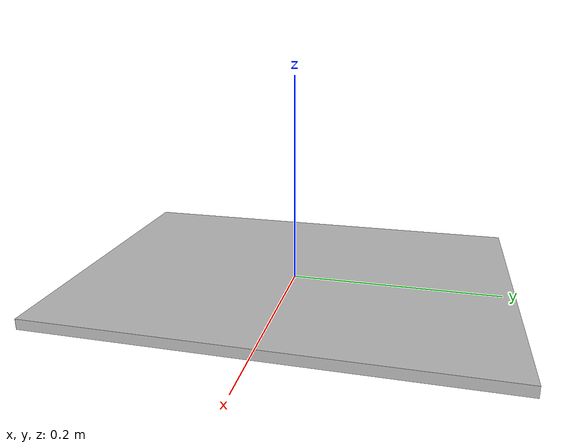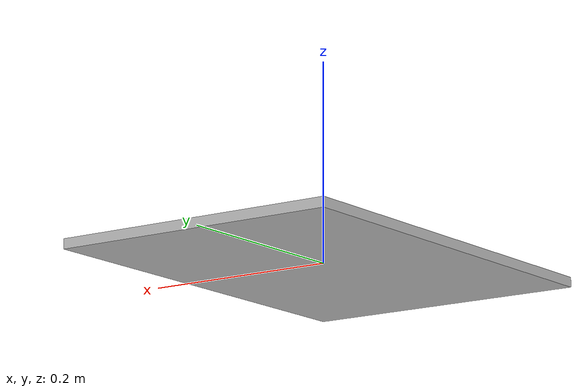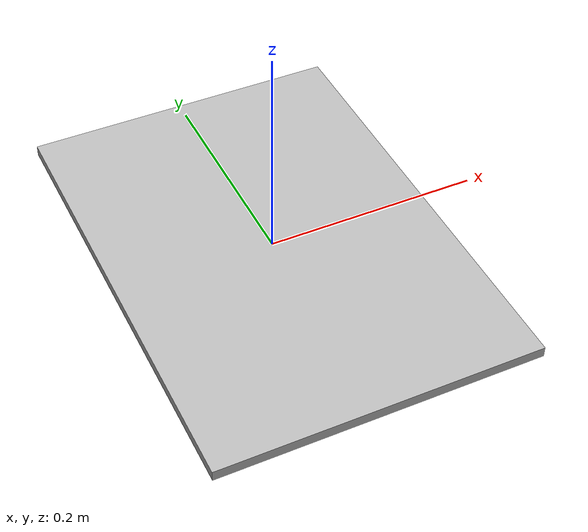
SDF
<?xml version="1.0" ?>
<sdf version="1.5">
  <model name="april_tag16_05_1">
    <static>true</static>
      <link name="april_tag16_05_1">
        <collision name="tag-collision">
          <pose>0 0 0 0 0 0</pose>
          <geometry>
            <box>
              <size>0.297 0.42 0.01</size>
            </box>
          </geometry>
        </collision>
        <visual name="tag-visual">
          <pose>0 0 0 0 0 0</pose>
          <geometry>
            <box>
              <size>0.297 0.42 0.01</size>
            </box>
          </geometry>
          <material>
            <script>
              <uri>model://april_tag16_05_1/materials/scripts</uri>
              <uri>model://april_tag16_05_1/materials/textures</uri>
              <name>april_tag16_05_1/Diffuse</name>
            </script>
          </material>
        </visual>
      </link>
  </model>
</sdf>
